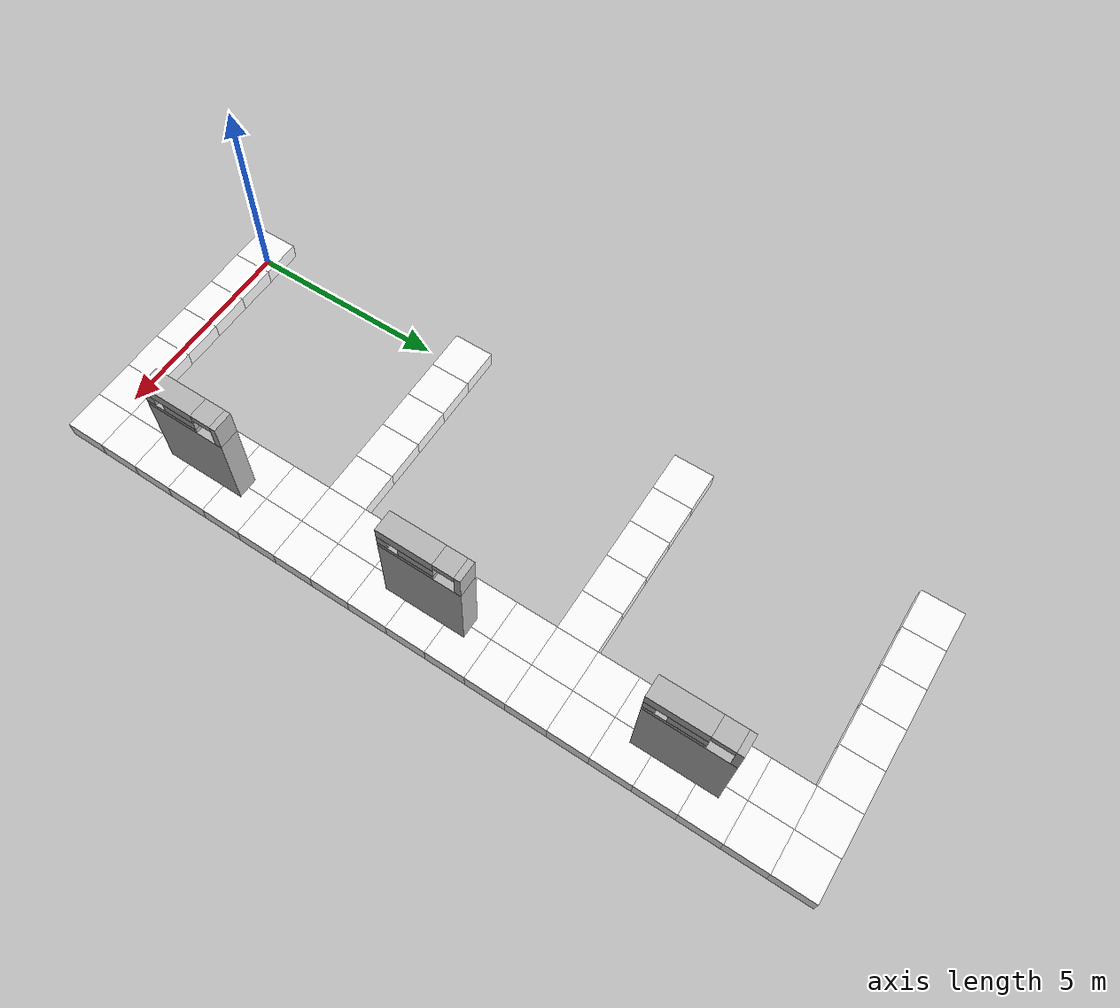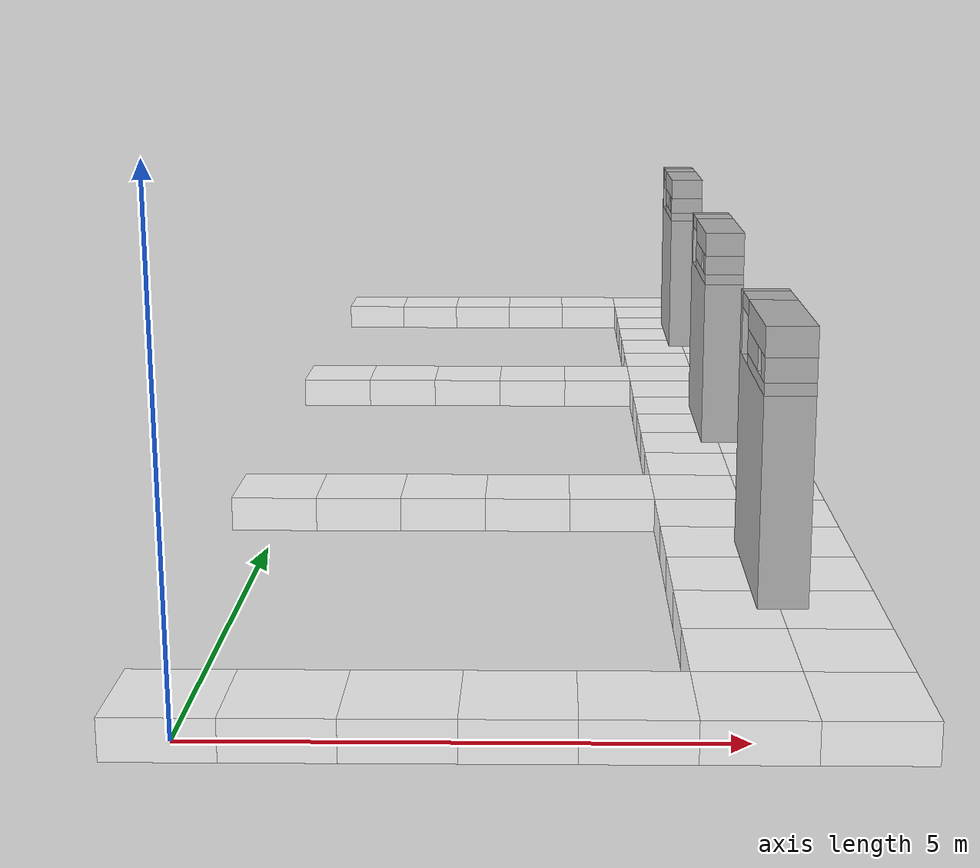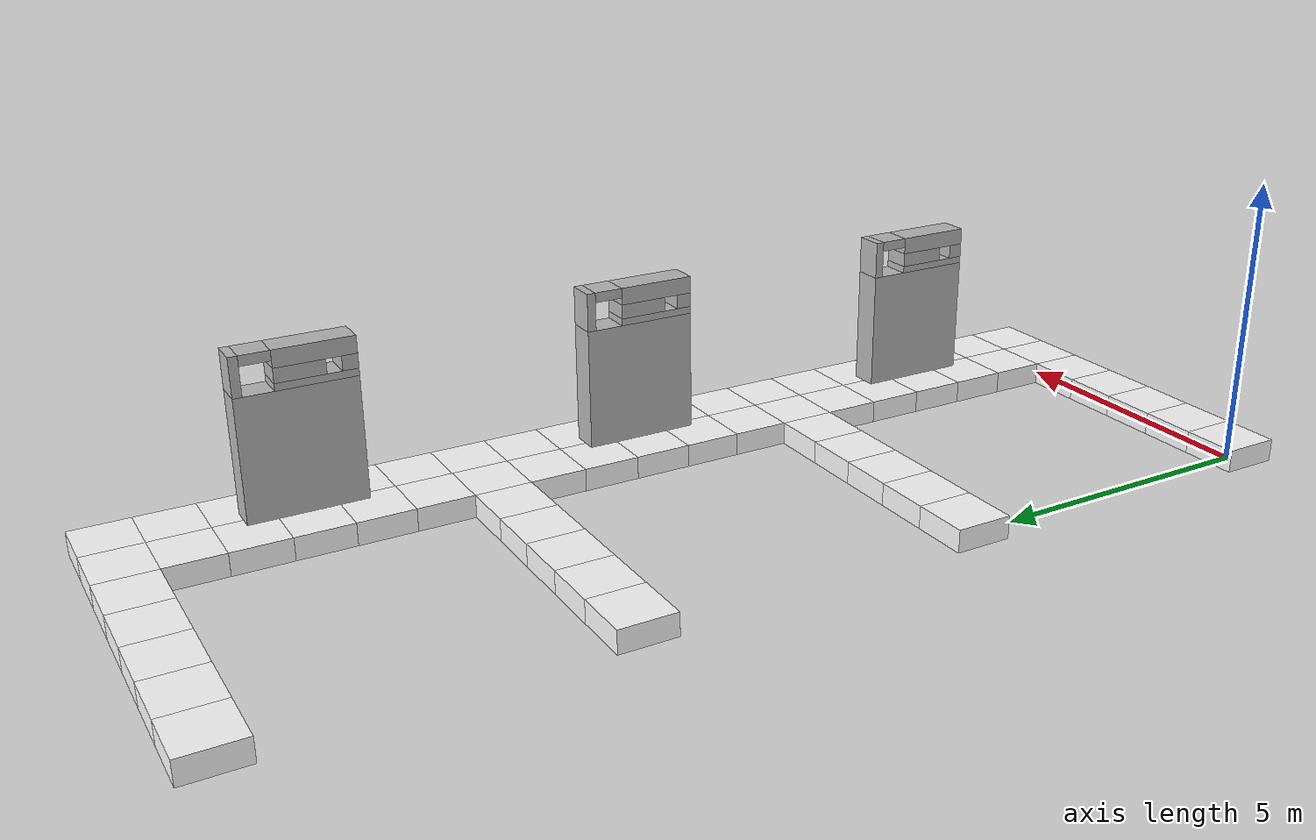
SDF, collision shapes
<?xml version="1.0" ?>
<sdf version="1.6">

  <model name="robotx_dock_2024">
    <static>true</static>

    <!-- The 2024 dock base -->
    <include>
      <uri>model://dock_2024_base</uri>
    </include>

    <!-- Placard #1 -->
    <model name="dock_2024_placard1">
      <pose>5.326 3 1.5 0 0 1.5707963267948966</pose>
      <include>
        <static>true</static>
        <pose>0 -0.2 0.25 0 0 3.14159</pose>
        <uri>model://placard_2022</uri>
      </include>
      <link name="link_symbols">
        <static>true</static>
        <pose>0 0.07 0 0 0 0 </pose>
        <visual name="visual_circle">
          <pose>0 0 0 1.571 0 0</pose>
          <geometry>
            <cylinder>
              <radius>0.5</radius>
              <length>0.001</length>
            </cylinder>
          </geometry>
          <transparency>1</transparency>
          <plugin name="vrx::PlacardPlugin" filename="libPlacardPlugin.so">
            <visuals>
              <visual>robotx_dock_2024::dock_2024_placard1::link_symbols::visual_circle</visual>
              <visual>robotx_dock_2024::dock_2024_placard1::link_symbols::visual_h_cross</visual>
              <visual>robotx_dock_2024::dock_2024_placard1::link_symbols::visual_v_cross</visual>
              <visual>robotx_dock_2024::dock_2024_placard1::link_symbols::visual_triangle</visual>
              <visual>robotx_dock_2024::dock_2024_placard1::link_symbols::visual_rectangle</visual>
            </visuals>
            <shuffle>true</shuffle>
            <robot_namespace>vrx/dock_2024_placard1</robot_namespace>
            <shuffle_topic>shuffle</shuffle_topic>
          </plugin>
        </visual>
        <visual name="visual_h_cross">
          <pose>0 0 0 1.571 0 0</pose>
          <geometry>
            <box>
              <size>0.99 0.33 0.001</size>
            </box>
          </geometry>
          <transparency>1</transparency>
        </visual>
        <visual name="visual_v_cross">
          <pose>0 0 0 1.571 0 0</pose>
          <geometry>
            <box>
              <size>0.33 0.99 0.001</size>
            </box>
          </geometry>
          <transparency>1</transparency>
        </visual>
        <visual name="visual_triangle">
          <pose> -0.5 0 -0.5 1.571 0 0</pose>
          <geometry>
            <mesh><uri>model://symbol_triangle/mesh/triangle.dae</uri></mesh>
          </geometry>
          <transparency>1</transparency>
        </visual>
        <visual name="visual_rectangle">
          <pose> 0 0 0 1.571 0 0</pose>
          <geometry>
            <box>
              <size>1 1 0.001</size>
            </box>
          </geometry>
          <transparency>1</transparency>
        </visual>
      </link>

      <joint name="placard_to_visual" type="fixed">
        <pose> 0 0 0 0 0 0 </pose>
        <parent>placard::link</parent>
        <child>link_symbols</child>
      </joint>

    </model>

    <!-- Placard #2 -->
    <model name="dock_2024_placard2">
      <pose>5.326 9 1.5 0 0 1.5707963267948966</pose>
      <include>
        <static>true</static>
        <pose>0 -0.2 0.25 0 0 3.14159</pose>
        <uri>model://placard_2022</uri>
      </include>
      <link name="link_symbols">
        <static>true</static>
        <pose>0 0.07 0 0 0 0 </pose>
        <visual name="visual_circle">
          <pose>0 0 0 1.571 0 0</pose>
          <geometry>
            <cylinder>
              <radius>0.5</radius>
              <length>0.001</length>
            </cylinder>
          </geometry>
          <transparency>1</transparency>
          <plugin name="vrx::PlacardPlugin" filename="libPlacardPlugin.so">
            <visuals>
              <visual>robotx_dock_2024::dock_2024_placard2::link_symbols::visual_circle</visual>
              <visual>robotx_dock_2024::dock_2024_placard2::link_symbols::visual_h_cross</visual>
              <visual>robotx_dock_2024::dock_2024_placard2::link_symbols::visual_v_cross</visual>
              <visual>robotx_dock_2024::dock_2024_placard2::link_symbols::visual_triangle</visual>
              <visual>robotx_dock_2024::dock_2024_placard2::link_symbols::visual_rectangle</visual>
            </visuals>
            <shuffle>true</shuffle>
            <robot_namespace>vrx/dock_2024_placard2</robot_namespace>
            <shuffle_topic>shuffle</shuffle_topic>
          </plugin>
        </visual>
        <visual name="visual_h_cross">
          <pose>0 0 0 1.571 0 0</pose>
          <geometry>
            <box>
              <size>0.99 0.33 0.001</size>
            </box>
          </geometry>
          <transparency>1</transparency>
        </visual>
        <visual name="visual_v_cross">
          <pose>0 0 0 1.571 0 0</pose>
          <geometry>
            <box>
              <size>0.33 0.99 0.001</size>
            </box>
          </geometry>
          <transparency>1</transparency>
        </visual>
        <visual name="visual_triangle">
          <pose> -0.5 0 -0.5 1.571 0 0</pose>
          <geometry>
            <mesh><uri>model://symbol_triangle/mesh/triangle.dae</uri></mesh>
          </geometry>
          <transparency>1</transparency>
        </visual>
        <visual name="visual_rectangle">
          <pose> 0 0 0 1.571 0 0</pose>
          <geometry>
            <box>
              <size>1 1 0.001</size>
            </box>
          </geometry>
          <transparency>1</transparency>
        </visual>
      </link>

      <joint name="placard_to_visual" type="fixed">
        <pose> 0 0 0 0 0 0 </pose>
        <parent>placard::link</parent>
        <child>link_symbols</child>
      </joint>

    </model>

    <!-- Placard #3 -->
    <model name="dock_2024_placard3">
      <pose>5.326 15 1.5 0 0 1.5707963267948966</pose>
      <include>
        <static>true</static>
        <pose>0 -0.2 0.25 0 0 3.14159</pose>
        <uri>model://placard_2022</uri>
      </include>
      <link name="link_symbols">
        <static>true</static>
        <pose>0 0.07 0 0 0 0 </pose>
        <visual name="visual_circle">
          <pose>0 0 0 1.571 0 0</pose>
          <geometry>
            <cylinder>
              <radius>0.5</radius>
              <length>0.001</length>
            </cylinder>
          </geometry>
          <transparency>1</transparency>
          <plugin name="vrx::PlacardPlugin" filename="libPlacardPlugin.so">
            <visuals>
              <visual>robotx_dock_2024::dock_2024_placard3::link_symbols::visual_circle</visual>
              <visual>robotx_dock_2024::dock_2024_placard3::link_symbols::visual_h_cross</visual>
              <visual>robotx_dock_2024::dock_2024_placard3::link_symbols::visual_v_cross</visual>
              <visual>robotx_dock_2024::dock_2024_placard3::link_symbols::visual_triangle</visual>
              <visual>robotx_dock_2024::dock_2024_placard3::link_symbols::visual_rectangle</visual>
            </visuals>
            <shuffle>true</shuffle>
            <robot_namespace>vrx/dock_2024_placard3</robot_namespace>
            <shuffle_topic>shuffle</shuffle_topic>
          </plugin>
        </visual>
        <visual name="visual_h_cross">
          <pose>0 0 0 1.571 0 0</pose>
          <geometry>
            <box>
              <size>0.99 0.33 0.001</size>
            </box>
          </geometry>
          <transparency>1</transparency>
        </visual>
        <visual name="visual_v_cross">
          <pose>0 0 0 1.571 0 0</pose>
          <geometry>
            <box>
              <size>0.33 0.99 0.001</size>
            </box>
          </geometry>
          <transparency>1</transparency>
        </visual>
        <visual name="visual_triangle">
          <pose> -0.5 0 -0.5 1.571 0 0</pose>
          <geometry>
            <mesh><uri>model://symbol_triangle/mesh/triangle.dae</uri></mesh>
          </geometry>
          <transparency>1</transparency>
        </visual>
        <visual name="visual_rectangle">
          <pose> 0 0 0 1.571 0 0</pose>
          <geometry>
            <box>
              <size>0.6 0.6 0.001</size>
            </box>
          </geometry>
          <transparency>1</transparency>
        </visual>
      </link>

      <joint name="placard_to_visual" type="fixed">
        <pose> 0 0 0 0 0 0 </pose>
        <parent>placard::link</parent>
        <child>link_symbols</child>
      </joint>

    </model>

  </model>

</sdf>

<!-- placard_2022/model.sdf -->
<sdf version="1.6">
  <model name="placard">
    <pose>0 0 1 0 0 0</pose>
    <!-- The white placard -->
    <link name="link">
      <collision name="collision_1">
        <pose>-0.9234 0.0 1.164 0.0 0.0 0.0</pose>
        <geometry>
          <box>
            <size>0.153199 0.500 0.672</size>
          </box>
        </geometry>
      </collision>
      <collision name="collision_2">
        <pose>-0.596803 0.0 1.41357 -3.14159 -1.5708 0.0</pose>
        <geometry>
          <box>
            <size>0.17285 0.5 0.5</size>
          </box>
        </geometry>
      </collision>
      <collision name="collision_3">
        <pose>0.326598 0.0 1.35111 0.0 0.0 0.0</pose>
        <geometry>
          <box>
            <size>1.3468 0.500 0.29777</size>
          </box>
        </geometry>
      </collision>
      <collision name="collision_4">
        <pose>0.070527 0.0 1.07723 0.0 0.0 0.0</pose>
        <geometry>
          <box>
            <size>0.834664 0.500 0.25</size>
          </box>
        </geometry>
      </collision>
      <collision name="collision_6">
        <pose>0.326598 0.0 0.890117 0.0 0.0 0.0</pose>
        <geometry>
          <box>
            <size>1.3468 0.500 0.124233</size>
          </box>
        </geometry>
      </collision>
      <collision name="collision_5">
        <pose>0.868936 0.0 1.07723 1.5708 0.0 1.5708</pose>
        <geometry>
          <box>
            <size>0.500 0.25 0.262128</size>
          </box>
        </geometry>
      </collision>
      <collision name="collision_7">
        <pose>0.0 0.0 -0.336 0.0 0.0 0.0</pose>
        <geometry>
          <box>
            <size>2.000 0.500 2.328</size>
          </box>
        </geometry>
      </collision>
      <visual name="visual">
        <geometry>
          <mesh>
            <uri>meshes/placard_2022.dae</uri>
          </mesh>
        </geometry>
      </visual>
    </link>
    <plugin filename="gz-sim-label-system" name="gz::sim::systems::Label">
      <label>7</label>
    </plugin>
  </model>
</sdf>

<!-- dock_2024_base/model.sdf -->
<sdf version="1.6">

  <!-- Important: This file is generated. DO NOT EDIT! -->

  <model name="robotx_dock_2024_base">
    <selfCollide>true</selfCollide>

    <static>true</static>

    <!-- Row 0 -->
    <include>
      <name>dock_block_0_0</name>
      <pose>0 0 0.25 0 0 0</pose>
      <uri>dock_block_2x2</uri>
    </include>
    <include>
      <name>dock_block_0_3</name>
      <pose>0 6 0.25 0 0 0</pose>
      <uri>dock_block_2x2</uri>
    </include>
    <include>
      <name>dock_block_0_6</name>
      <pose>0 12 0.25 0 0 0</pose>
      <uri>dock_block_2x2</uri>
    </include>
    <include>
      <name>dock_block_0_9</name>
      <pose>0 18 0.25 0 0 0</pose>
      <uri>dock_block_2x2</uri>
    </include>

    <!-- Row 1 -->
    <include>
      <name>dock_block_1_0</name>
      <pose>1 0 0.25 0 0 0</pose>
      <uri>dock_block_2x2</uri>
    </include>
    <include>
      <name>dock_block_1_3</name>
      <pose>1 6 0.25 0 0 0</pose>
      <uri>dock_block_2x2</uri>
    </include>
    <include>
      <name>dock_block_1_6</name>
      <pose>1 12 0.25 0 0 0</pose>
      <uri>dock_block_2x2</uri>
    </include>
    <include>
      <name>dock_block_1_9</name>
      <pose>1 18 0.25 0 0 0</pose>
      <uri>dock_block_2x2</uri>
    </include>

    <!-- Row 2 -->
    <include>
      <name>dock_block_2_0</name>
      <pose>2 0 0.25 0 0 0</pose>
      <uri>dock_block_2x2</uri>
    </include>
    <include>
      <name>dock_block_2_3</name>
      <pose>2 6 0.25 0 0 0</pose>
      <uri>dock_block_2x2</uri>
    </include>
    <include>
      <name>dock_block_2_6</name>
      <pose>2 12 0.25 0 0 0</pose>
      <uri>dock_block_2x2</uri>
    </include>
    <include>
      <name>dock_block_2_9</name>
      <pose>2 18 0.25 0 0 0</pose>
      <uri>dock_block_2x2</uri>
    </include>

    <!-- Row 3 -->
    <include>
      <name>dock_block_3_0</name>
      <pose>3 0 0.25 0 0 0</pose>
      <uri>dock_block_2x2</uri>
    </include>
    <include>
      <name>dock_block_3_3</name>
      <pose>3 6 0.25 0 0 0</pose>
      <uri>dock_block_2x2</uri>
    </include>
    <include>
      <name>dock_block_3_6</name>
      <pose>3 12 0.25 0 0 0</pose>
      <uri>dock_block_2x2</uri>
    </include>
    <include>
      <name>dock_block_3_9</name>
      <pose>3 18 0.25 0 0 0</pose>
      <uri>dock_block_2x2</uri>
    </include>

    <!-- Row 4 -->
    <include>
      <name>dock_block_4_0</name>
      <pose>4 0 0.25 0 0 0</pose>
      <uri>dock_block_2x2</uri>
    </include>
    <include>
      <name>dock_block_4_3</name>
      <pose>4 6 0.25 0 0 0</pose>
      <uri>dock_block_2x2</uri>
    </include>
    <include>
      <name>dock_block_4_6</name>
      <pose>4 12 0.25 0 0 0</pose>
      <uri>dock_block_2x2</uri>
    </include>
    <include>
      <name>dock_block_4_9</name>
      <pose>4 18 0.25 0 0 0</pose>
      <uri>dock_block_2x2</uri>
    </include>

    <!-- Row 5 -->
    <include>
      <name>dock_block_5_0</name>
      <pose>5 0 0.25 0 0 0</pose>
      <uri>dock_block_2x2</uri>
    </include>
    <include>
      <name>dock_block_5_1</name>
      <pose>5 1 0.25 0 0 0</pose>
      <uri>dock_block_2x2</uri>
    </include>
    <include>
      <name>dock_block_5_2</name>
      <pose>5 2 0.25 0 0 0</pose>
      <uri>dock_block_2x2</uri>
    </include>
    <include>
      <name>dock_block_5_3</name>
      <pose>5 3 0.25 0 0 0</pose>
      <uri>dock_block_2x2</uri>
    </include>
    <include>
      <name>dock_block_5_4</name>
      <pose>5 4 0.25 0 0 0</pose>
      <uri>dock_block_2x2</uri>
    </include>
    <include>
      <name>dock_block_5_5</name>
      <pose>5 5 0.25 0 0 0</pose>
      <uri>dock_block_2x2</uri>
    </include>
    <include>
      <name>dock_block_5_6</name>
      <pose>5 6 0.25 0 0 0</pose>
      <uri>dock_block_2x2</uri>
    </include>
    <include>
      <name>dock_block_5_7</name>
      <pose>5 7 0.25 0 0 0</pose>
      <uri>dock_block_2x2</uri>
    </include>
    <include>
      <name>dock_block_5_8</name>
      <pose>5 8 0.25 0 0 0</pose>
      <uri>dock_block_2x2</uri>
    </include>
    <include>
      <name>dock_block_5_9</name>
      <pose>5 9 0.25 0 0 0</pose>
      <uri>dock_block_2x2</uri>
    </include>
    <include>
      <name>dock_block_5_10</name>
      <pose>5 10 0.25 0 0 0</pose>
      <uri>dock_block_2x2</uri>
    </include>
    <include>
      <name>dock_block_5_11</name>
      <pose>5 11 0.25 0 0 0</pose>
      <uri>dock_block_2x2</uri>
    </include>
    <include>
      <name>dock_block_5_12</name>
      <pose>5 12 0.25 0 0 0</pose>
      <uri>dock_block_2x2</uri>
    </include>
    <include>
      <name>dock_block_5_13</name>
      <pose>5 13 0.25 0 0 0</pose>
      <uri>dock_block_2x2</uri>
    </include>
    <include>
      <name>dock_block_5_14</name>
      <pose>5 14 0.25 0 0 0</pose>
      <uri>dock_block_2x2</uri>
    </include>
    <include>
      <name>dock_block_5_15</name>
      <pose>5 15 0.25 0 0 0</pose>
      <uri>dock_block_2x2</uri>
    </include>
    <include>
      <name>dock_block_5_16</name>
      <pose>5 16 0.25 0 0 0</pose>
      <uri>dock_block_2x2</uri>
    </include>
    <include>
      <name>dock_block_5_17</name>
      <pose>5 17 0.25 0 0 0</pose>
      <uri>dock_block_2x2</uri>
    </include>
    <include>
      <name>dock_block_5_18</name>
      <pose>5 18 0.25 0 0 0</pose>
      <uri>dock_block_2x2</uri>
    </include>

    <!-- Row 6 -->
    <include>
      <name>dock_block_6_0</name>
      <pose>6 0 0.25 0 0 0</pose>
      <uri>dock_block_2x2</uri>
    </include>
    <include>
      <name>dock_block_6_1</name>
      <pose>6 1 0.25 0 0 0</pose>
      <uri>dock_block_2x2</uri>
    </include>
    <include>
      <name>dock_block_6_2</name>
      <pose>6 2 0.25 0 0 0</pose>
      <uri>dock_block_2x2</uri>
    </include>
    <include>
      <name>dock_block_6_3</name>
      <pose>6 3 0.25 0 0 0</pose>
      <uri>dock_block_2x2</uri>
    </include>
    <include>
      <name>dock_block_6_4</name>
      <pose>6 4 0.25 0 0 0</pose>
      <uri>dock_block_2x2</uri>
    </include>
    <include>
      <name>dock_block_6_5</name>
      <pose>6 5 0.25 0 0 0</pose>
      <uri>dock_block_2x2</uri>
    </include>
    <include>
      <name>dock_block_6_6</name>
      <pose>6 6 0.25 0 0 0</pose>
      <uri>dock_block_2x2</uri>
    </include>
    <include>
      <name>dock_block_6_7</name>
      <pose>6 7 0.25 0 0 0</pose>
      <uri>dock_block_2x2</uri>
    </include>
    <include>
      <name>dock_block_6_8</name>
      <pose>6 8 0.25 0 0 0</pose>
      <uri>dock_block_2x2</uri>
    </include>
    <include>
      <name>dock_block_6_9</name>
      <pose>6 9 0.25 0 0 0</pose>
      <uri>dock_block_2x2</uri>
    </include>
    <include>
      <name>dock_block_6_10</name>
      <pose>6 10 0.25 0 0 0</pose>
      <uri>dock_block_2x2</uri>
    </include>
    <include>
      <name>dock_block_6_11</name>
      <pose>6 11 0.25 0 0 0</pose>
      <uri>dock_block_2x2</uri>
    </include>
    <include>
      <name>dock_block_6_12</name>
      <pose>6 12 0.25 0 0 0</pose>
      <uri>dock_block_2x2</uri>
    </include>
    <include>
      <name>dock_block_6_13</name>
      <pose>6 13 0.25 0 0 0</pose>
      <uri>dock_block_2x2</uri>
    </include>
    <include>
      <name>dock_block_6_14</name>
      <pose>6 14 0.25 0 0 0</pose>
      <uri>dock_block_2x2</uri>
    </include>
    <include>
      <name>dock_block_6_15</name>
      <pose>6 15 0.25 0 0 0</pose>
      <uri>dock_block_2x2</uri>
    </include>
    <include>
      <name>dock_block_6_16</name>
      <pose>6 16 0.25 0 0 0</pose>
      <uri>dock_block_2x2</uri>
    </include>
    <include>
      <name>dock_block_6_17</name>
      <pose>6 17 0.25 0 0 0</pose>
      <uri>dock_block_2x2</uri>
    </include>
    <include>
      <name>dock_block_6_18</name>
      <pose>6 18 0.25 0 0 0</pose>
      <uri>dock_block_2x2</uri>
    </include>

  </model>
</sdf>

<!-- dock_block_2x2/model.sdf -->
<sdf version="1.5">
  <model name="dock_block_2x2">
    <static>true</static>
    <link name="link">
      <collision name="collision">
        <pose>0 0 0 0 0 0</pose>
        <geometry>
          <box>
            <size>1 1 0.4</size>
          </box>
        </geometry>
      </collision>
      <visual name="visual">
        <pose>-0.25 0.25 0.0 0 0 0 </pose>
        <geometry>
          <mesh>
            <uri>mesh/dock_block_2x2.dae</uri>
          </mesh>
        </geometry>
        <material>
          <diffuse>1.0 1.0 1.0</diffuse>
          <specular>1.0 1.0 1.0</specular>
          <pbr>
            <metal>
              <albedo_map>file://dock_block_2x2/mesh/DockCubes_Albedo.png</albedo_map>
              <normal_map>file://dock_block_2x2/mesh/DockCubes_Normal.png</normal_map>
              <roughness_map>file://dock_block_2x2/mesh/DockCubes_Roughness.png</roughness_map>
              <metalness_map>file://dock_block_2x2/mesh/DockCubes_Metalness.png</metalness_map>
            </metal>
          </pbr>
        </material>
      </visual>
    </link>
  </model>
</sdf>
